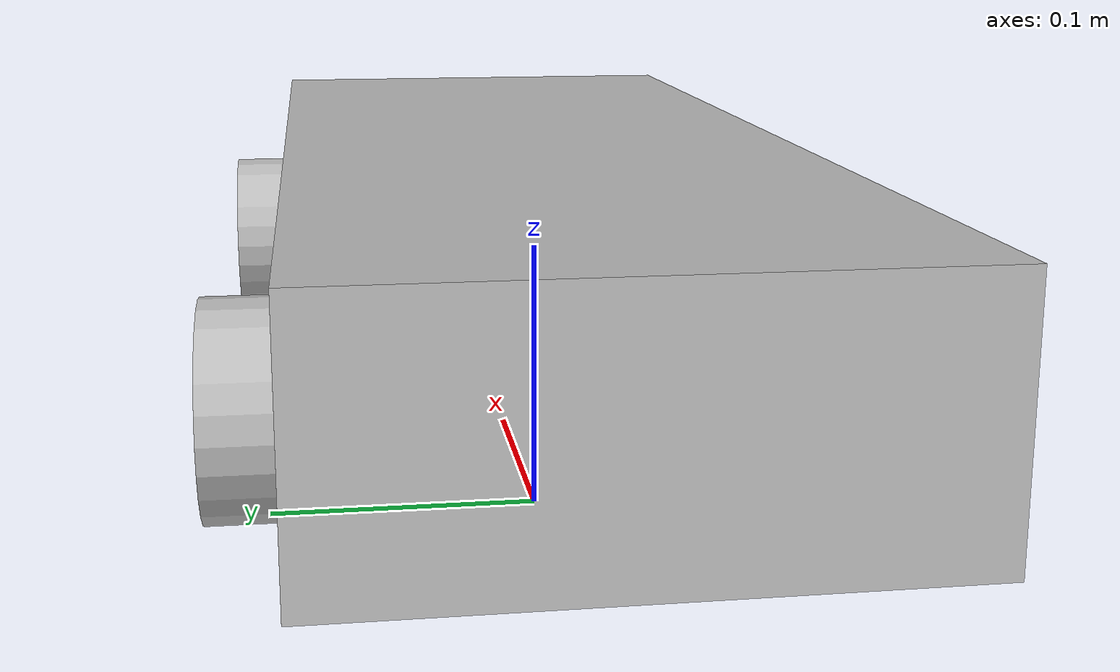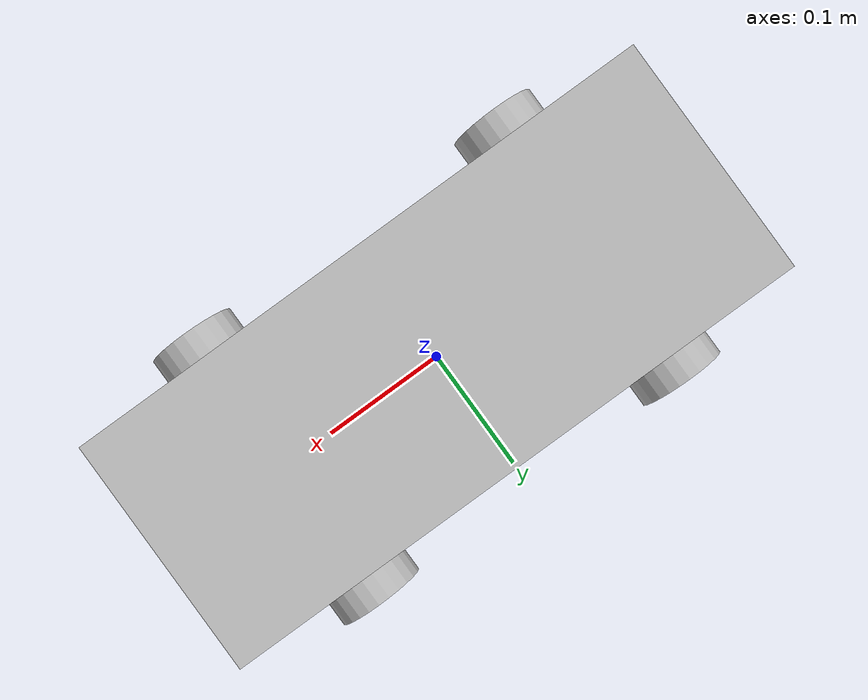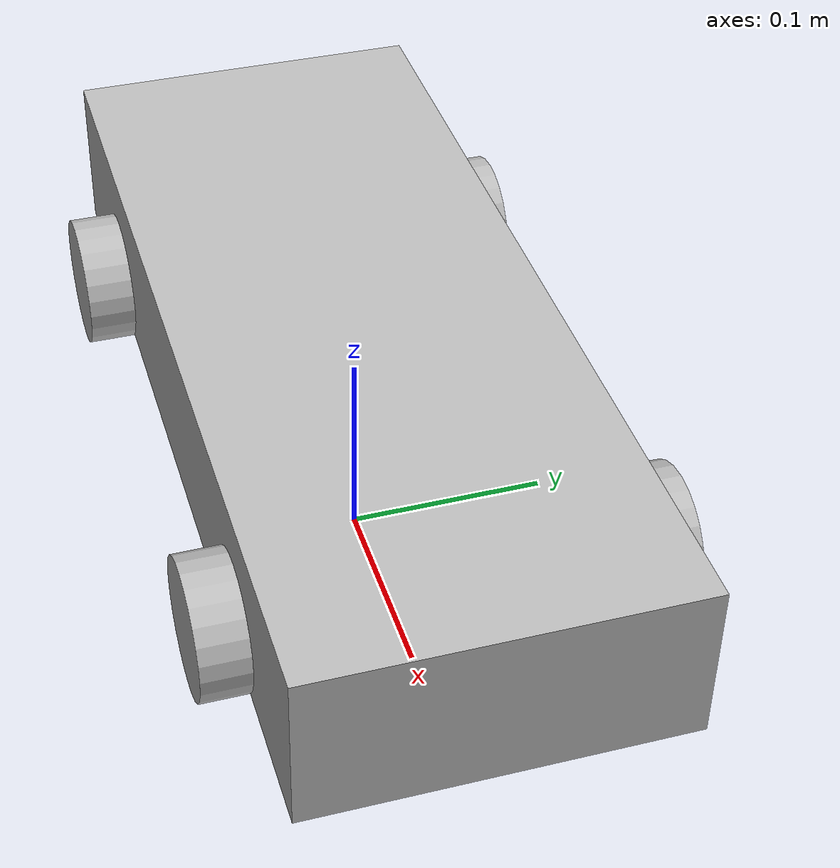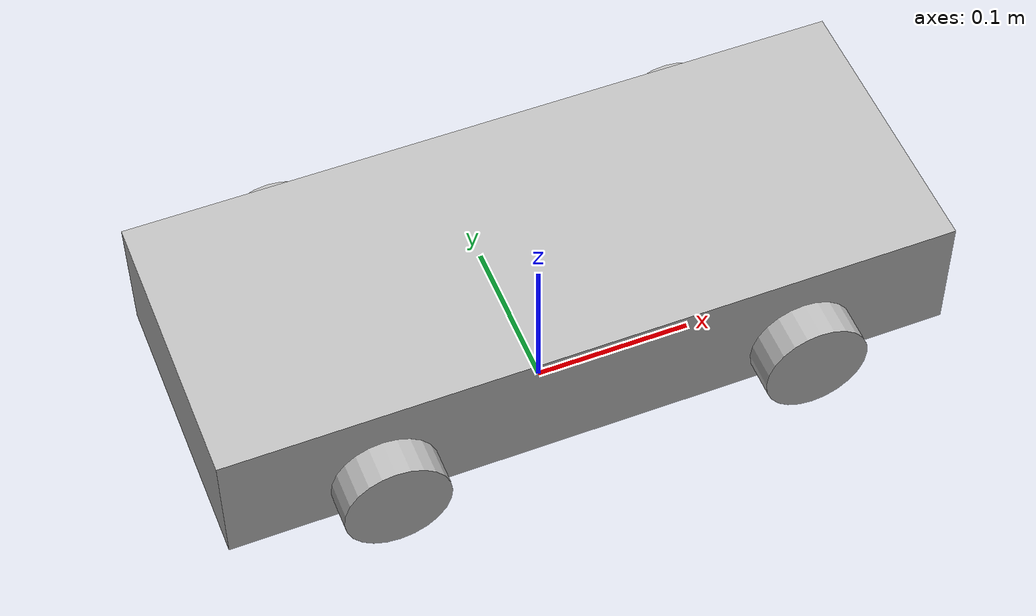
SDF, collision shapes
<?xml version="1.0" ?>
<sdf version="1.6">
  <model name="driftbot">
    <pose>0 0 0.05 0 0 0</pose>
    <link name="chassis">
      <pose>0 0 0.05 0 0 0</pose>
      <inertial>
        <mass>4.5</mass>
        <pose>0 0 -0.02 0 0 0</pose>
        <inertia><ixx>0.014</ixx><iyy>0.062</iyy><izz>0.070</izz></inertia>
      </inertial>
      <visual name="visual">
        <pose>0 0 -0.05 1.57 0 1.57</pose>
        <geometry><mesh><uri>model://prius_hybrid/meshes/Audi_R8_Spyder.obj</uri><scale>0.1 0.1 0.1</scale></mesh></geometry>
      </visual>
      <collision name="collision">
        <geometry><box><size>0.45 0.18 0.08</size></box></geometry>
      </collision>
    </link>

    <link name="front_left_wheel">
      <pose>0.13 0.10 0.0325 -1.57 0 0</pose>
      <inertial> <mass>0.5</mass>
        <inertia><ixx>0.0001</ixx><iyy>0.0001</iyy><izz>0.0001</izz></inertia>
      </inertial>
      <collision name="collision">
        <geometry><cylinder><radius>0.0325</radius><length>0.026</length></cylinder></geometry>
        <surface><friction><ode><mu>1.0</mu><mu2>1.0</mu2></ode></friction></surface>
      </collision>
    </link>
    <link name="front_right_wheel">
      <pose>0.13 -0.10 0.0325 -1.57 0 0</pose>
      <inertial>
        <mass>0.5</mass>
        <inertia><ixx>0.0001</ixx><iyy>0.0001</iyy><izz>0.0001</izz></inertia>
      </inertial>
      <collision name="collision">
        <geometry><cylinder><radius>0.0325</radius><length>0.026</length></cylinder></geometry>
        <surface><friction><ode><mu>1.0</mu><mu2>1.0</mu2></ode></friction></surface>
      </collision>
    </link>

    <link name="rear_left_wheel">
      <pose>-0.13 0.10 0.0325 -1.57 0 0</pose>
      <inertial>
        <mass>0.5</mass>
        <inertia><ixx>0.0001</ixx><iyy>0.0001</iyy><izz>0.0001</izz></inertia>
      </inertial>
      <collision name="collision">
        <geometry><cylinder><radius>0.0325</radius><length>0.026</length></cylinder></geometry>
        <surface><friction><ode><mu>0.25</mu><mu2>0.25</mu2></ode></friction></surface>
      </collision>
    </link>
    <link name="rear_right_wheel">
      <pose>-0.13 -0.10 0.0325 -1.57 0 0</pose>
      <inertial>
        <mass>0.5</mass>
        <inertia><ixx>0.0001</ixx><iyy>0.0001</iyy><izz>0.0001</izz></inertia>
      </inertial>
      <collision name="collision">
        <geometry><cylinder><radius>0.0325</radius><length>0.026</length></cylinder></geometry>
        <surface><friction><ode><mu>0.25</mu><mu2>0.25</mu2></ode></friction></surface>
      </collision>
    </link>

    <link name="front_left_knuckle"><pose>0.13 0.10 0.0325 0 0 0</pose><inertial><mass>0.01</mass><inertia><ixx>0.0001</ixx><iyy>0.0001</iyy><izz>0.0001</izz></inertia></inertial></link>
    <link name="front_right_knuckle"><pose>0.13 -0.10 0.0325 0 0 0</pose><inertial><mass>0.01</mass><inertia><ixx>0.0001</ixx><iyy>0.0001</iyy><izz>0.0001</izz></inertia></inertial></link>

    <joint type="revolute" name="front_left_steer_joint"><child>front_left_knuckle</child><parent>chassis</parent><axis><xyz>0 0 1</xyz><limit><lower>-0.8</lower><upper>0.8</upper></limit></axis></joint>
    <joint type="revolute" name="front_right_steer_joint"><child>front_right_knuckle</child><parent>chassis</parent><axis><xyz>0 0 1</xyz><limit><lower>-0.8</lower><upper>0.8</upper></limit></axis></joint>
    <joint type="revolute" name="front_left_wheel_joint"><child>front_left_wheel</child><parent>front_left_knuckle</parent><axis><xyz>0 0 1</xyz></axis></joint>
    <joint type="revolute" name="front_right_wheel_joint"><child>front_right_wheel</child><parent>front_right_knuckle</parent><axis><xyz>0 0 1</xyz></axis></joint>
    <joint type="revolute" name="rear_left_wheel_joint"><child>rear_left_wheel</child><parent>chassis</parent><axis><xyz>0 0 1</xyz></axis></joint>
    <joint type="revolute" name="rear_right_wheel_joint"><child>rear_right_wheel</child><parent>chassis</parent><axis><xyz>0 0 1</xyz></axis></joint>

    <plugin filename="libignition-gazebo-joint-position-controller-system.so" name="ignition::gazebo::systems::JointPositionController">
      <joint_name>front_left_steer_joint</joint_name>
      <topic>/model/driftbot/joint/front_left_steer_joint/cmd_pos</topic>
    </plugin>
    <plugin filename="libignition-gazebo-joint-position-controller-system.so" name="ignition::gazebo::systems::JointPositionController">
      <joint_name>front_right_steer_joint</joint_name>
      <topic>/model/driftbot/joint/front_right_steer_joint/cmd_pos</topic>
    </plugin>
    <plugin filename="libignition-gazebo-joint-controller-system.so" name="ignition::gazebo::systems::JointController">
      <joint_name>rear_left_wheel_joint</joint_name>
      <topic>/model/driftbot/joint/rear_left_wheel_joint/cmd_vel</topic>
      <p_gain>10.0</p_gain>
    </plugin>
    <plugin filename="libignition-gazebo-joint-controller-system.so" name="ignition::gazebo::systems::JointController">
      <joint_name>rear_right_wheel_joint</joint_name>
      <topic>/model/driftbot/joint/rear_right_wheel_joint/cmd_vel</topic>
      <p_gain>10.0</p_gain>
    </plugin>
    <plugin filename="libignition-gazebo-odometry-publisher-system.so" name="ignition::gazebo::systems::OdometryPublisher">
      <odom_topic>/model/driftbot/odometry</odom_topic>
    </plugin>
  </model>
</sdf>
